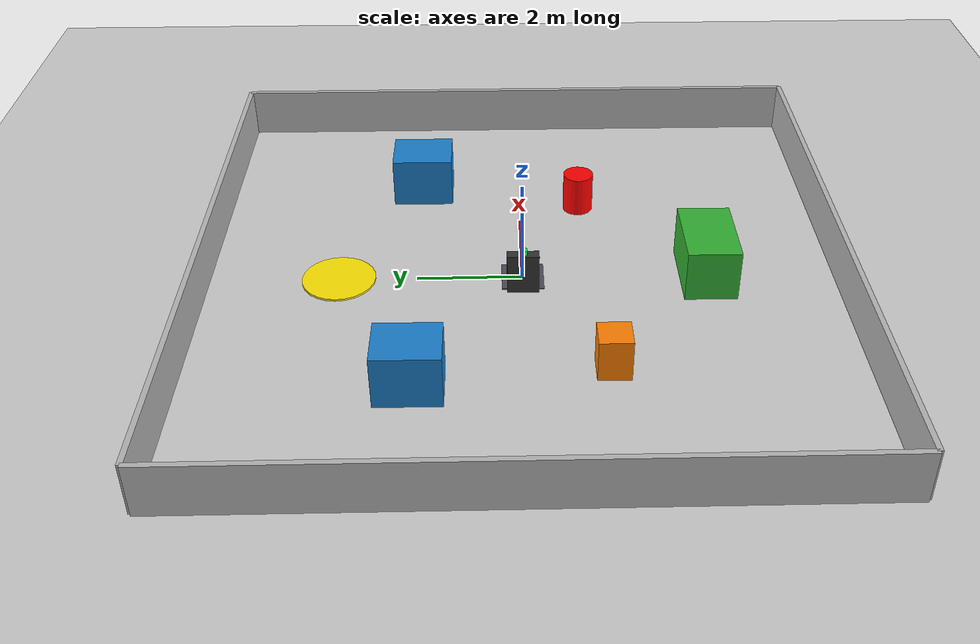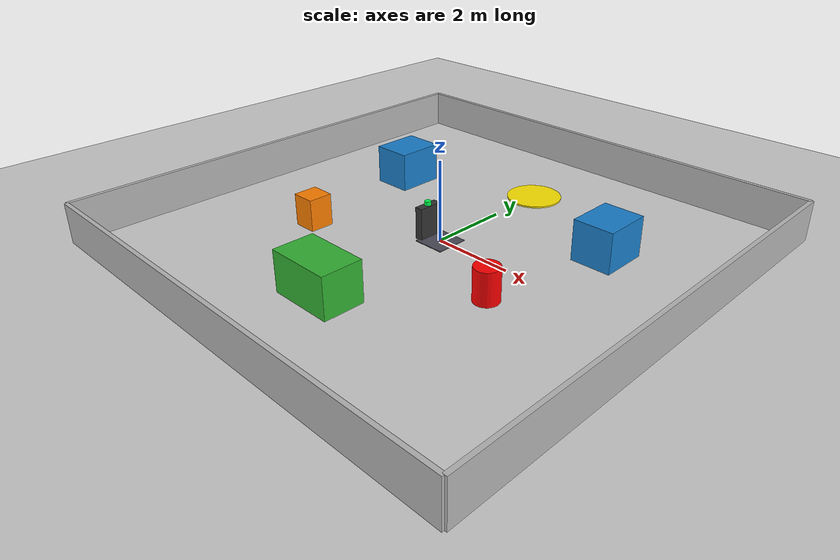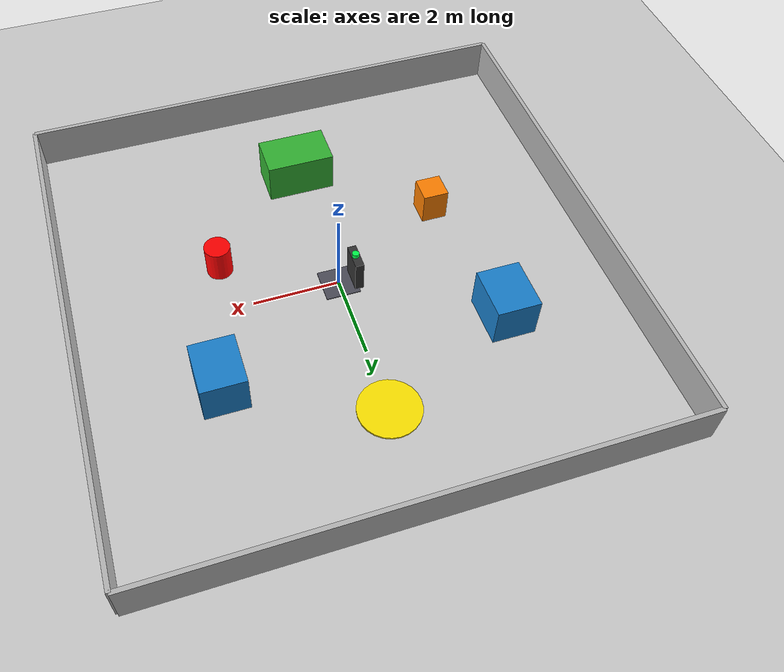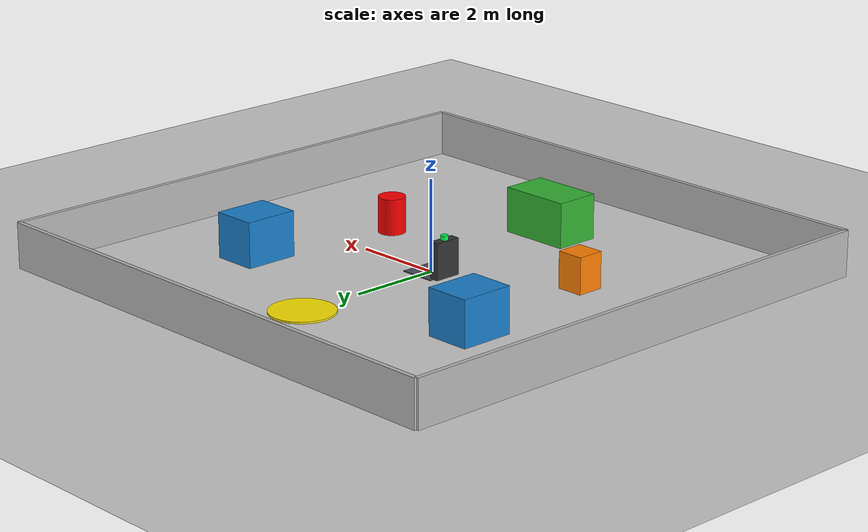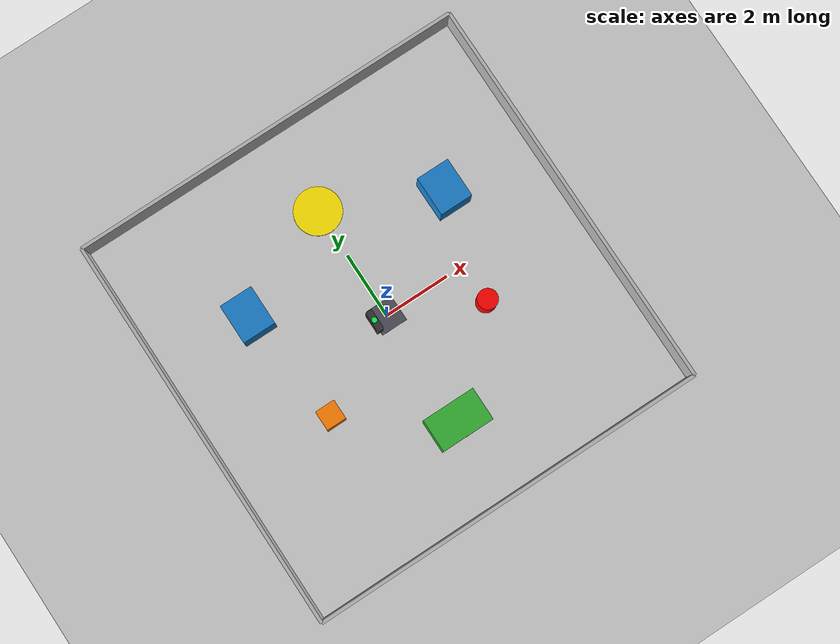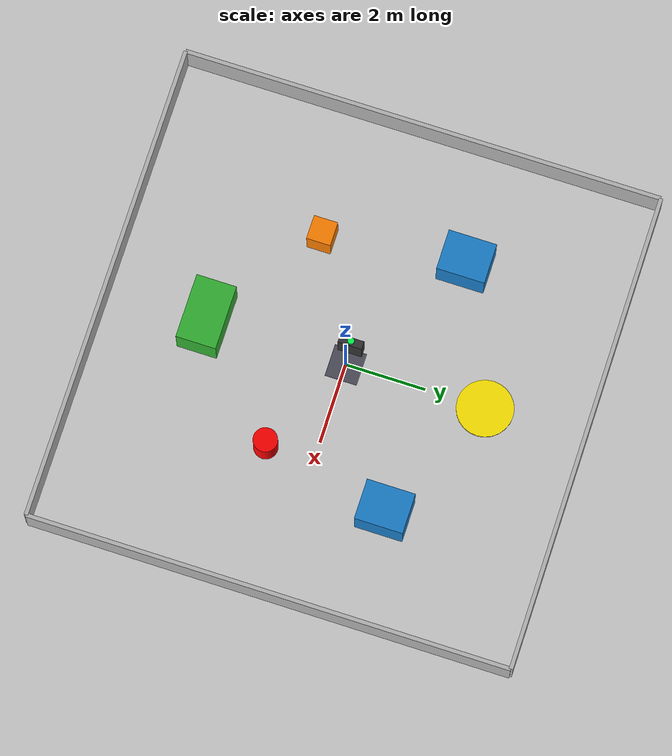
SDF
<?xml version="1.0" ?>
<sdf version="1.8">
  <world name="burger_world">
    <physics name="1ms" type="ignored">
      <max_step_size>0.001</max_step_size>
      <real_time_factor>1.0</real_time_factor>
    </physics>

    <plugin name="gz::sim::systems::Physics" filename="gz-sim-physics-system"/>
    <plugin name="gz::sim::systems::UserCommands" filename="gz-sim-user-commands-system"/>
    <plugin name="gz::sim::systems::SceneBroadcaster" filename="gz-sim-scene-broadcaster-system"/>
    <plugin name="gz::sim::systems::Sensors" filename="gz-sim-sensors-system">
      <render_engine>ogre2</render_engine>
    </plugin>

    <light type="directional" name="sun">
      <cast_shadows>true</cast_shadows>
      <pose>0 0 10 0 0 0</pose>
      <diffuse>0.8 0.8 0.8 1</diffuse>
      <specular>0.2 0.2 0.2 1</specular>
      <attenuation>
        <range>1000</range>
        <constant>0.9</constant>
        <linear>0.01</linear>
        <quadratic>0.001</quadratic>
      </attenuation>
      <direction>-0.5 0.1 -0.9</direction>
    </light>

    <model name="ground_plane">
      <static>true</static>
      <link name="link">
        <collision name="collision">
          <geometry>
            <plane>
              <normal>0 0 1</normal>
              <size>100 100</size>
            </plane>
          </geometry>
        </collision>
        <visual name="visual">
          <geometry>
            <plane>
              <normal>0 0 1</normal>
              <size>100 100</size>
            </plane>
          </geometry>
          <material>
            <ambient>0.8 0.8 0.8 1</ambient>
            <diffuse>0.8 0.8 0.8 1</diffuse>
            <specular>0.8 0.8 0.8 1</specular>
          </material>
        </visual>
      </link>
    </model>

    <!-- Industrial Facility Outer Enclosure Walls (12m x 12m Plant Boundary) -->
    <model name="enclosure_walls">
      <static>true</static>
      <pose>0 0 0 0 0 0</pose>
      <link name="box_walls">
        <collision name="n_col"><pose>6 0 0.5 0 0 0</pose><geometry><box><size>0.1 12 1</size></box></geometry></collision>
        <visual name="n_vis"><pose>6 0 0.5 0 0 0</pose><geometry><box><size>0.1 12 1</size></box></geometry></visual>

        <collision name="s_col"><pose>-6 0 0.5 0 0 0</pose><geometry><box><size>0.1 12 1</size></box></geometry></collision>
        <visual name="s_vis"><pose>-6 0 0.5 0 0 0</pose><geometry><box><size>0.1 12 1</size></box></geometry></visual>

        <collision name="e_col"><pose>0 6 0.5 0 0 0</pose><geometry><box><size>12 0.1 1</size></box></geometry></collision>
        <visual name="e_vis"><pose>0 6 0.5 0 0 0</pose><geometry><box><size>12 0.1 1</size></box></geometry></visual>

        <collision name="w_col"><pose>0 -6 0.5 0 0 0</pose><geometry><box><size>12 0.1 1</size></box></geometry></collision>
        <visual name="w_vis"><pose>0 -6 0.5 0 0 0</pose><geometry><box><size>12 0.1 1</size></box></geometry></visual>
      </link>
    </model>

    <!-- Industrial Equipment & Storage Racks -->
    <model name="storage_rack_east">
      <static>true</static>
      <pose>3.2 2.0 0.5 0 0 0</pose>
      <link name="link">
        <collision name="collision"><geometry><box><size>1.0 1.2 1.0</size></box></geometry></collision>
        <visual name="visual">
          <geometry><box><size>1.0 1.2 1.0</size></box></geometry>
          <material><ambient>0.1 0.4 0.6 1</ambient><diffuse>0.1 0.5 0.8 1</diffuse></material>
        </visual>
      </link>
    </model>

    <model name="storage_rack_west">
      <static>true</static>
      <pose>-3.2 2.0 0.5 0 0 0</pose>
      <link name="link">
        <collision name="collision"><geometry><box><size>1.0 1.2 1.0</size></box></geometry></collision>
        <visual name="visual">
          <geometry><box><size>1.0 1.2 1.0</size></box></geometry>
          <material><ambient>0.1 0.4 0.6 1</ambient><diffuse>0.1 0.5 0.8 1</diffuse></material>
        </visual>
      </link>
    </model>

    <model name="heavy_machinery_south">
      <static>true</static>
      <pose>0.0 -3.5 0.5 0 0 0</pose>
      <link name="link">
        <collision name="collision"><geometry><box><size>1.6 1.0 1.0</size></box></geometry></collision>
        <visual name="visual">
          <geometry><box><size>1.6 1.0 1.0</size></box></geometry>
          <material><ambient>0.2 0.5 0.2 1</ambient><diffuse>0.2 0.7 0.2 1</diffuse></material>
        </visual>
      </link>
    </model>

    <!-- Distributed Industrial Safety Hazards -->
    <model name="fire_hazard_barrel">
      <static>true</static>
      <pose>2.5 -1.2 0.4 0 0 0</pose>
      <link name="link">
        <collision name="collision"><geometry><cylinder><radius>0.3</radius><length>0.8</length></cylinder></geometry></collision>
        <visual name="visual">
          <geometry><cylinder><radius>0.3</radius><length>0.8</length></cylinder></geometry>
          <material><ambient>0.9 0.1 0.1 1</ambient><diffuse>1.0 0.0 0.0 1</diffuse></material>
        </visual>
      </link>
    </model>

    <model name="chemical_leak_spill">
      <static>true</static>
      <pose>0.0 3.5 0.02 0 0 0</pose>
      <link name="link">
        <collision name="collision"><geometry><cylinder><radius>0.7</radius><length>0.04</length></cylinder></geometry></collision>
        <visual name="visual">
          <geometry><cylinder><radius>0.7</radius><length>0.04</length></cylinder></geometry>
          <material><ambient>0.9 0.8 0.0 1</ambient><diffuse>1.0 0.9 0.0 1</diffuse></material>
        </visual>
      </link>
    </model>

    <model name="pathway_blockage_box">
      <static>true</static>
      <pose>-2.8 -1.5 0.4 0 0 0</pose>
      <link name="link">
        <collision name="collision"><geometry><box><size>0.6 0.6 0.8</size></box></geometry></collision>
        <visual name="visual">
          <geometry><box><size>0.6 0.6 0.8</size></box></geometry>
          <material><ambient>0.9 0.4 0.0 1</ambient><diffuse>1.0 0.5 0.0 1</diffuse></material>
        </visual>
      </link>
    </model>

    <!-- Autonomous AMR Charging Dock Station Base -->
    <model name="charging_dock_station">
      <static>true</static>
      <pose>-0.4 0.0 0.0 0 0 0</pose>
      <link name="link">
        <!-- Floor Charging Plate -->
        <collision name="plate_col"><pose>0.4 0 0.01 0 0 0</pose><geometry><box><size>0.8 0.8 0.02</size></box></geometry></collision>
        <visual name="plate_vis">
          <pose>0.4 0 0.01 0 0 0</pose>
          <geometry><box><size>0.8 0.8 0.02</size></box></geometry>
          <material><ambient>0.2 0.2 0.25 1</ambient><diffuse>0.3 0.3 0.35 1</diffuse></material>
        </visual>
        <!-- Charging Tower -->
        <collision name="tower_col"><pose>0 0 0.4 0 0 0</pose><geometry><box><size>0.2 0.6 0.8</size></box></geometry></collision>
        <visual name="tower_vis">
          <pose>0 0 0.4 0 0 0</pose>
          <geometry><box><size>0.2 0.6 0.8</size></box></geometry>
          <material><ambient>0.1 0.1 0.1 1</ambient><diffuse>0.2 0.2 0.2 1</diffuse></material>
        </visual>
        <!-- Status Indicator Beacon (Green LED) -->
        <visual name="beacon_vis">
          <pose>0 0 0.85 0 0 0</pose>
          <geometry><cylinder><radius>0.08</radius><length>0.1</length></cylinder></geometry>
          <material><ambient>0.0 0.9 0.2 1</ambient><diffuse>0.0 1.0 0.3 1</diffuse></material>
        </visual>
      </link>
    </model>

  </world>
</sdf>
